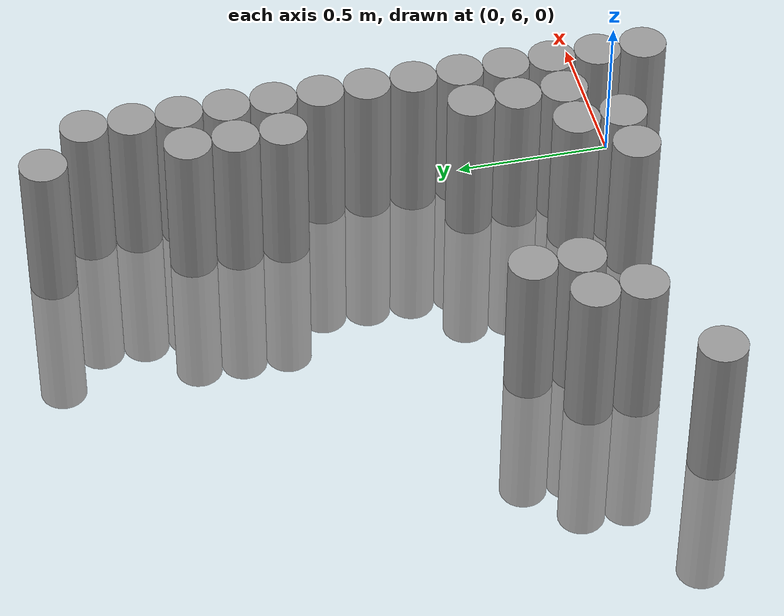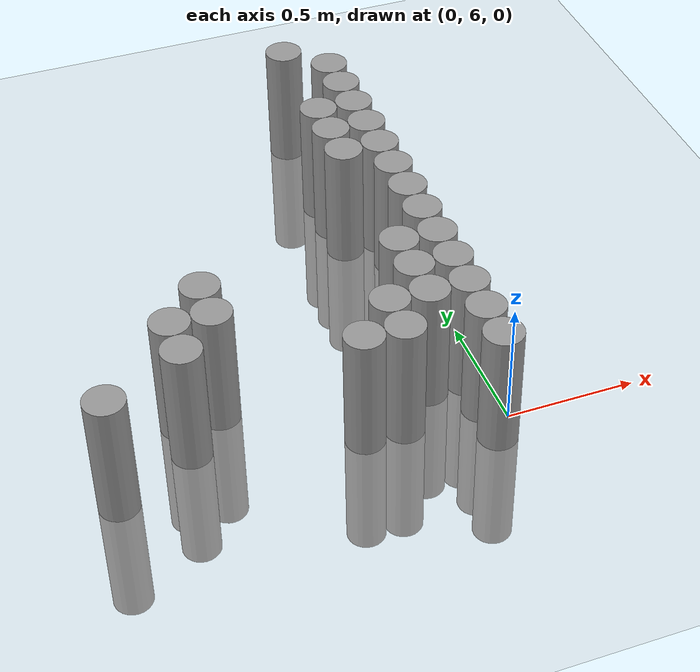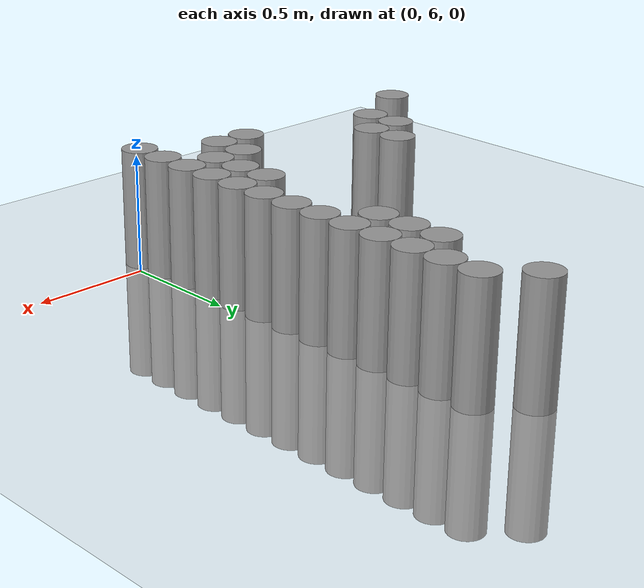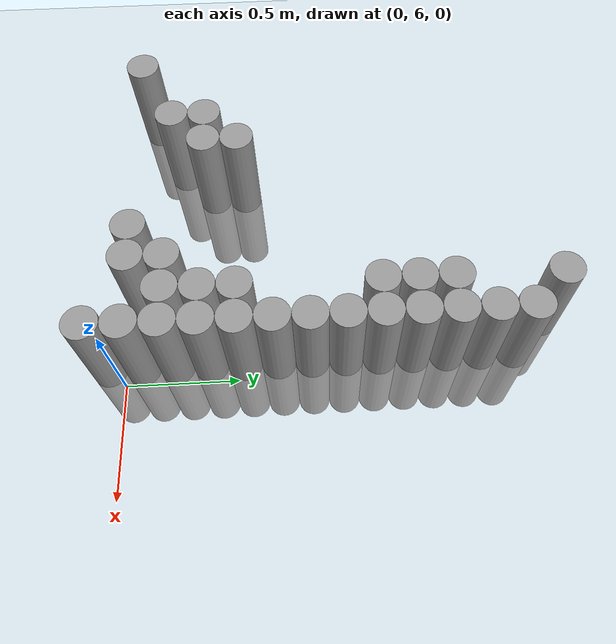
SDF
<sdf version="1.6">
 <world name="default">
  <model name="ground_plane">
   <static>1</static>
   <static>1</static>
   <link name="link">
    <collision name="collision">
     <geometry><plane><normal>0 0 1</normal><size>100 100</size></plane></geometry>
     <surface><friction><ode><mu>100</mu><mu2>50</mu2></ode></friction></surface>
    </collision>
    <visual name="visual">
     <cast_shadows>0</cast_shadows>
     <geometry><plane><normal>0 0 1</normal><size>100 100</size></plane></geometry>
     <material>
      <script><uri>file://media/materials/scripts/gazebo.material</uri><name>Gazebo/Grey</name></script>
     </material>
    </visual>
   </link>
  </model>
  <model name="unit_cylinder_159">
   <static>1</static>
   <pose>-1.425000 6.075000 0.000000 0.000000 0.000000 0.000000</pose>
   <link name="link">
    <inertial>
     <mass>1</mass>
     <inertia><ixx>0.145833</ixx><ixy>0</ixy><ixz>0</ixz><iyy>0.145833</iyy><iyz>0</iyz><izz>0.125</izz></inertia>
    </inertial>
    <collision name="collision">
     <geometry><cylinder><radius>0.075000</radius><length>1</length></cylinder></geometry>
    </collision>
    <visual name="visual">
     <geometry><cylinder><radius>0.075000</radius><length>1</length></cylinder></geometry>
     <material>
      <script><name>Gazebo/Grey</name><uri>file://media/materials/scripts/gazebo.material</uri></script>
     </material>
    </visual>
   </link>
  </model>
  <model name="unit_cylinder_162">
   <static>1</static>
   <pose>-1.125000 6.225000 0.000000 0.000000 0.000000 0.000000</pose>
   <link name="link">
    <inertial>
     <mass>1</mass>
     <inertia><ixx>0.145833</ixx><ixy>0</ixy><ixz>0</ixz><iyy>0.145833</iyy><iyz>0</iyz><izz>0.125</izz></inertia>
    </inertial>
    <collision name="collision">
     <geometry><cylinder><radius>0.075000</radius><length>1</length></cylinder></geometry>
    </collision>
    <visual name="visual">
     <geometry><cylinder><radius>0.075000</radius><length>1</length></cylinder></geometry>
     <material>
      <script><name>Gazebo/Grey</name><uri>file://media/materials/scripts/gazebo.material</uri></script>
     </material>
    </visual>
   </link>
  </model>
  <model name="unit_cylinder_163">
   <static>1</static>
   <pose>-1.125000 6.375000 0.000000 0.000000 0.000000 0.000000</pose>
   <link name="link">
    <inertial>
     <mass>1</mass>
     <inertia><ixx>0.145833</ixx><ixy>0</ixy><ixz>0</ixz><iyy>0.145833</iyy><iyz>0</iyz><izz>0.125</izz></inertia>
    </inertial>
    <collision name="collision">
     <geometry><cylinder><radius>0.075000</radius><length>1</length></cylinder></geometry>
    </collision>
    <visual name="visual">
     <geometry><cylinder><radius>0.075000</radius><length>1</length></cylinder></geometry>
     <material>
      <script><name>Gazebo/Grey</name><uri>file://media/materials/scripts/gazebo.material</uri></script>
     </material>
    </visual>
   </link>
  </model>
  <model name="unit_cylinder_165">
   <static>1</static>
   <pose>-0.975000 6.375000 0.000000 0.000000 0.000000 0.000000</pose>
   <link name="link">
    <inertial>
     <mass>1</mass>
     <inertia><ixx>0.145833</ixx><ixy>0</ixy><ixz>0</ixz><iyy>0.145833</iyy><iyz>0</iyz><izz>0.125</izz></inertia>
    </inertial>
    <collision name="collision">
     <geometry><cylinder><radius>0.075000</radius><length>1</length></cylinder></geometry>
    </collision>
    <visual name="visual">
     <geometry><cylinder><radius>0.075000</radius><length>1</length></cylinder></geometry>
     <material>
      <script><name>Gazebo/Grey</name><uri>file://media/materials/scripts/gazebo.material</uri></script>
     </material>
    </visual>
   </link>
  </model>
  <model name="unit_cylinder_166">
   <static>1</static>
   <pose>-0.975000 6.525000 0.000000 0.000000 0.000000 0.000000</pose>
   <link name="link">
    <inertial>
     <mass>1</mass>
     <inertia><ixx>0.145833</ixx><ixy>0</ixy><ixz>0</ixz><iyy>0.145833</iyy><iyz>0</iyz><izz>0.125</izz></inertia>
    </inertial>
    <collision name="collision">
     <geometry><cylinder><radius>0.075000</radius><length>1</length></cylinder></geometry>
    </collision>
    <visual name="visual">
     <geometry><cylinder><radius>0.075000</radius><length>1</length></cylinder></geometry>
     <material>
      <script><name>Gazebo/Grey</name><uri>file://media/materials/scripts/gazebo.material</uri></script>
     </material>
    </visual>
   </link>
  </model>
  <model name="unit_cylinder_169">
   <static>1</static>
   <pose>-0.525000 6.075000 0.000000 0.000000 0.000000 0.000000</pose>
   <link name="link">
    <inertial>
     <mass>1</mass>
     <inertia><ixx>0.145833</ixx><ixy>0</ixy><ixz>0</ixz><iyy>0.145833</iyy><iyz>0</iyz><izz>0.125</izz></inertia>
    </inertial>
    <collision name="collision">
     <geometry><cylinder><radius>0.075000</radius><length>1</length></cylinder></geometry>
    </collision>
    <visual name="visual">
     <geometry><cylinder><radius>0.075000</radius><length>1</length></cylinder></geometry>
     <material>
      <script><name>Gazebo/Grey</name><uri>file://media/materials/scripts/gazebo.material</uri></script>
     </material>
    </visual>
   </link>
  </model>
  <model name="unit_cylinder_173">
   <static>1</static>
   <pose>-0.375000 6.075000 0.000000 0.000000 0.000000 0.000000</pose>
   <link name="link">
    <inertial>
     <mass>1</mass>
     <inertia><ixx>0.145833</ixx><ixy>0</ixy><ixz>0</ixz><iyy>0.145833</iyy><iyz>0</iyz><izz>0.125</izz></inertia>
    </inertial>
    <collision name="collision">
     <geometry><cylinder><radius>0.075000</radius><length>1</length></cylinder></geometry>
    </collision>
    <visual name="visual">
     <geometry><cylinder><radius>0.075000</radius><length>1</length></cylinder></geometry>
     <material>
      <script><name>Gazebo/Grey</name><uri>file://media/materials/scripts/gazebo.material</uri></script>
     </material>
    </visual>
   </link>
  </model>
  <model name="unit_cylinder_174">
   <static>1</static>
   <pose>-0.375000 6.225000 0.000000 0.000000 0.000000 0.000000</pose>
   <link name="link">
    <inertial>
     <mass>1</mass>
     <inertia><ixx>0.145833</ixx><ixy>0</ixy><ixz>0</ixz><iyy>0.145833</iyy><iyz>0</iyz><izz>0.125</izz></inertia>
    </inertial>
    <collision name="collision">
     <geometry><cylinder><radius>0.075000</radius><length>1</length></cylinder></geometry>
    </collision>
    <visual name="visual">
     <geometry><cylinder><radius>0.075000</radius><length>1</length></cylinder></geometry>
     <material>
      <script><name>Gazebo/Grey</name><uri>file://media/materials/scripts/gazebo.material</uri></script>
     </material>
    </visual>
   </link>
  </model>
  <model name="unit_cylinder_181">
   <static>1</static>
   <pose>-0.225000 6.225000 0.000000 0.000000 0.000000 0.000000</pose>
   <link name="link">
    <inertial>
     <mass>1</mass>
     <inertia><ixx>0.145833</ixx><ixy>0</ixy><ixz>0</ixz><iyy>0.145833</iyy><iyz>0</iyz><izz>0.125</izz></inertia>
    </inertial>
    <collision name="collision">
     <geometry><cylinder><radius>0.075000</radius><length>1</length></cylinder></geometry>
    </collision>
    <visual name="visual">
     <geometry><cylinder><radius>0.075000</radius><length>1</length></cylinder></geometry>
     <material>
      <script><name>Gazebo/Grey</name><uri>file://media/materials/scripts/gazebo.material</uri></script>
     </material>
    </visual>
   </link>
  </model>
  <model name="unit_cylinder_182">
   <static>1</static>
   <pose>-0.225000 6.375000 0.000000 0.000000 0.000000 0.000000</pose>
   <link name="link">
    <inertial>
     <mass>1</mass>
     <inertia><ixx>0.145833</ixx><ixy>0</ixy><ixz>0</ixz><iyy>0.145833</iyy><iyz>0</iyz><izz>0.125</izz></inertia>
    </inertial>
    <collision name="collision">
     <geometry><cylinder><radius>0.075000</radius><length>1</length></cylinder></geometry>
    </collision>
    <visual name="visual">
     <geometry><cylinder><radius>0.075000</radius><length>1</length></cylinder></geometry>
     <material>
      <script><name>Gazebo/Grey</name><uri>file://media/materials/scripts/gazebo.material</uri></script>
     </material>
    </visual>
   </link>
  </model>
  <model name="unit_cylinder_183">
   <static>1</static>
   <pose>-0.225000 6.525000 0.000000 0.000000 0.000000 0.000000</pose>
   <link name="link">
    <inertial>
     <mass>1</mass>
     <inertia><ixx>0.145833</ixx><ixy>0</ixy><ixz>0</ixz><iyy>0.145833</iyy><iyz>0</iyz><izz>0.125</izz></inertia>
    </inertial>
    <collision name="collision">
     <geometry><cylinder><radius>0.075000</radius><length>1</length></cylinder></geometry>
    </collision>
    <visual name="visual">
     <geometry><cylinder><radius>0.075000</radius><length>1</length></cylinder></geometry>
     <material>
      <script><name>Gazebo/Grey</name><uri>file://media/materials/scripts/gazebo.material</uri></script>
     </material>
    </visual>
   </link>
  </model>
  <model name="unit_cylinder_184">
   <static>1</static>
   <pose>-0.225000 7.125000 0.000000 0.000000 0.000000 0.000000</pose>
   <link name="link">
    <inertial>
     <mass>1</mass>
     <inertia><ixx>0.145833</ixx><ixy>0</ixy><ixz>0</ixz><iyy>0.145833</iyy><iyz>0</iyz><izz>0.125</izz></inertia>
    </inertial>
    <collision name="collision">
     <geometry><cylinder><radius>0.075000</radius><length>1</length></cylinder></geometry>
    </collision>
    <visual name="visual">
     <geometry><cylinder><radius>0.075000</radius><length>1</length></cylinder></geometry>
     <material>
      <script><name>Gazebo/Grey</name><uri>file://media/materials/scripts/gazebo.material</uri></script>
     </material>
    </visual>
   </link>
  </model>
  <model name="unit_cylinder_185">
   <static>1</static>
   <pose>-0.225000 7.275000 0.000000 0.000000 0.000000 0.000000</pose>
   <link name="link">
    <inertial>
     <mass>1</mass>
     <inertia><ixx>0.145833</ixx><ixy>0</ixy><ixz>0</ixz><iyy>0.145833</iyy><iyz>0</iyz><izz>0.125</izz></inertia>
    </inertial>
    <collision name="collision">
     <geometry><cylinder><radius>0.075000</radius><length>1</length></cylinder></geometry>
    </collision>
    <visual name="visual">
     <geometry><cylinder><radius>0.075000</radius><length>1</length></cylinder></geometry>
     <material>
      <script><name>Gazebo/Grey</name><uri>file://media/materials/scripts/gazebo.material</uri></script>
     </material>
    </visual>
   </link>
  </model>
  <model name="unit_cylinder_186">
   <static>1</static>
   <pose>-0.225000 7.425000 0.000000 0.000000 0.000000 0.000000</pose>
   <link name="link">
    <inertial>
     <mass>1</mass>
     <inertia><ixx>0.145833</ixx><ixy>0</ixy><ixz>0</ixz><iyy>0.145833</iyy><iyz>0</iyz><izz>0.125</izz></inertia>
    </inertial>
    <collision name="collision">
     <geometry><cylinder><radius>0.075000</radius><length>1</length></cylinder></geometry>
    </collision>
    <visual name="visual">
     <geometry><cylinder><radius>0.075000</radius><length>1</length></cylinder></geometry>
     <material>
      <script><name>Gazebo/Grey</name><uri>file://media/materials/scripts/gazebo.material</uri></script>
     </material>
    </visual>
   </link>
  </model>
  <model name="unit_cylinder_187">
   <static>1</static>
   <pose>-0.225000 7.875000 0.000000 0.000000 0.000000 0.000000</pose>
   <link name="link">
    <inertial>
     <mass>1</mass>
     <inertia><ixx>0.145833</ixx><ixy>0</ixy><ixz>0</ixz><iyy>0.145833</iyy><iyz>0</iyz><izz>0.125</izz></inertia>
    </inertial>
    <collision name="collision">
     <geometry><cylinder><radius>0.075000</radius><length>1</length></cylinder></geometry>
    </collision>
    <visual name="visual">
     <geometry><cylinder><radius>0.075000</radius><length>1</length></cylinder></geometry>
     <material>
      <script><name>Gazebo/Grey</name><uri>file://media/materials/scripts/gazebo.material</uri></script>
     </material>
    </visual>
   </link>
  </model>
  <model name="unit_cylinder_200">
   <static>1</static>
   <pose>-0.075000 5.925000 0.000000 0.000000 0.000000 0.000000</pose>
   <link name="link">
    <inertial>
     <mass>1</mass>
     <inertia><ixx>0.145833</ixx><ixy>0</ixy><ixz>0</ixz><iyy>0.145833</iyy><iyz>0</iyz><izz>0.125</izz></inertia>
    </inertial>
    <collision name="collision">
     <geometry><cylinder><radius>0.075000</radius><length>1</length></cylinder></geometry>
    </collision>
    <visual name="visual">
     <geometry><cylinder><radius>0.075000</radius><length>1</length></cylinder></geometry>
     <material>
      <script><name>Gazebo/Grey</name><uri>file://media/materials/scripts/gazebo.material</uri></script>
     </material>
    </visual>
   </link>
  </model>
  <model name="unit_cylinder_201">
   <static>1</static>
   <pose>-0.075000 6.075000 0.000000 0.000000 0.000000 0.000000</pose>
   <link name="link">
    <inertial>
     <mass>1</mass>
     <inertia><ixx>0.145833</ixx><ixy>0</ixy><ixz>0</ixz><iyy>0.145833</iyy><iyz>0</iyz><izz>0.125</izz></inertia>
    </inertial>
    <collision name="collision">
     <geometry><cylinder><radius>0.075000</radius><length>1</length></cylinder></geometry>
    </collision>
    <visual name="visual">
     <geometry><cylinder><radius>0.075000</radius><length>1</length></cylinder></geometry>
     <material>
      <script><name>Gazebo/Grey</name><uri>file://media/materials/scripts/gazebo.material</uri></script>
     </material>
    </visual>
   </link>
  </model>
  <model name="unit_cylinder_202">
   <static>1</static>
   <pose>-0.075000 6.225000 0.000000 0.000000 0.000000 0.000000</pose>
   <link name="link">
    <inertial>
     <mass>1</mass>
     <inertia><ixx>0.145833</ixx><ixy>0</ixy><ixz>0</ixz><iyy>0.145833</iyy><iyz>0</iyz><izz>0.125</izz></inertia>
    </inertial>
    <collision name="collision">
     <geometry><cylinder><radius>0.075000</radius><length>1</length></cylinder></geometry>
    </collision>
    <visual name="visual">
     <geometry><cylinder><radius>0.075000</radius><length>1</length></cylinder></geometry>
     <material>
      <script><name>Gazebo/Grey</name><uri>file://media/materials/scripts/gazebo.material</uri></script>
     </material>
    </visual>
   </link>
  </model>
  <model name="unit_cylinder_203">
   <static>1</static>
   <pose>-0.075000 6.375000 0.000000 0.000000 0.000000 0.000000</pose>
   <link name="link">
    <inertial>
     <mass>1</mass>
     <inertia><ixx>0.145833</ixx><ixy>0</ixy><ixz>0</ixz><iyy>0.145833</iyy><iyz>0</iyz><izz>0.125</izz></inertia>
    </inertial>
    <collision name="collision">
     <geometry><cylinder><radius>0.075000</radius><length>1</length></cylinder></geometry>
    </collision>
    <visual name="visual">
     <geometry><cylinder><radius>0.075000</radius><length>1</length></cylinder></geometry>
     <material>
      <script><name>Gazebo/Grey</name><uri>file://media/materials/scripts/gazebo.material</uri></script>
     </material>
    </visual>
   </link>
  </model>
  <model name="unit_cylinder_204">
   <static>1</static>
   <pose>-0.075000 6.525000 0.000000 0.000000 0.000000 0.000000</pose>
   <link name="link">
    <inertial>
     <mass>1</mass>
     <inertia><ixx>0.145833</ixx><ixy>0</ixy><ixz>0</ixz><iyy>0.145833</iyy><iyz>0</iyz><izz>0.125</izz></inertia>
    </inertial>
    <collision name="collision">
     <geometry><cylinder><radius>0.075000</radius><length>1</length></cylinder></geometry>
    </collision>
    <visual name="visual">
     <geometry><cylinder><radius>0.075000</radius><length>1</length></cylinder></geometry>
     <material>
      <script><name>Gazebo/Grey</name><uri>file://media/materials/scripts/gazebo.material</uri></script>
     </material>
    </visual>
   </link>
  </model>
  <model name="unit_cylinder_205">
   <static>1</static>
   <pose>-0.075000 6.675000 0.000000 0.000000 0.000000 0.000000</pose>
   <link name="link">
    <inertial>
     <mass>1</mass>
     <inertia><ixx>0.145833</ixx><ixy>0</ixy><ixz>0</ixz><iyy>0.145833</iyy><iyz>0</iyz><izz>0.125</izz></inertia>
    </inertial>
    <collision name="collision">
     <geometry><cylinder><radius>0.075000</radius><length>1</length></cylinder></geometry>
    </collision>
    <visual name="visual">
     <geometry><cylinder><radius>0.075000</radius><length>1</length></cylinder></geometry>
     <material>
      <script><name>Gazebo/Grey</name><uri>file://media/materials/scripts/gazebo.material</uri></script>
     </material>
    </visual>
   </link>
  </model>
  <model name="unit_cylinder_206">
   <static>1</static>
   <pose>-0.075000 6.825000 0.000000 0.000000 0.000000 0.000000</pose>
   <link name="link">
    <inertial>
     <mass>1</mass>
     <inertia><ixx>0.145833</ixx><ixy>0</ixy><ixz>0</ixz><iyy>0.145833</iyy><iyz>0</iyz><izz>0.125</izz></inertia>
    </inertial>
    <collision name="collision">
     <geometry><cylinder><radius>0.075000</radius><length>1</length></cylinder></geometry>
    </collision>
    <visual name="visual">
     <geometry><cylinder><radius>0.075000</radius><length>1</length></cylinder></geometry>
     <material>
      <script><name>Gazebo/Grey</name><uri>file://media/materials/scripts/gazebo.material</uri></script>
     </material>
    </visual>
   </link>
  </model>
  <model name="unit_cylinder_207">
   <static>1</static>
   <pose>-0.075000 6.975000 0.000000 0.000000 0.000000 0.000000</pose>
   <link name="link">
    <inertial>
     <mass>1</mass>
     <inertia><ixx>0.145833</ixx><ixy>0</ixy><ixz>0</ixz><iyy>0.145833</iyy><iyz>0</iyz><izz>0.125</izz></inertia>
    </inertial>
    <collision name="collision">
     <geometry><cylinder><radius>0.075000</radius><length>1</length></cylinder></geometry>
    </collision>
    <visual name="visual">
     <geometry><cylinder><radius>0.075000</radius><length>1</length></cylinder></geometry>
     <material>
      <script><name>Gazebo/Grey</name><uri>file://media/materials/scripts/gazebo.material</uri></script>
     </material>
    </visual>
   </link>
  </model>
  <model name="unit_cylinder_208">
   <static>1</static>
   <pose>-0.075000 7.125000 0.000000 0.000000 0.000000 0.000000</pose>
   <link name="link">
    <inertial>
     <mass>1</mass>
     <inertia><ixx>0.145833</ixx><ixy>0</ixy><ixz>0</ixz><iyy>0.145833</iyy><iyz>0</iyz><izz>0.125</izz></inertia>
    </inertial>
    <collision name="collision">
     <geometry><cylinder><radius>0.075000</radius><length>1</length></cylinder></geometry>
    </collision>
    <visual name="visual">
     <geometry><cylinder><radius>0.075000</radius><length>1</length></cylinder></geometry>
     <material>
      <script><name>Gazebo/Grey</name><uri>file://media/materials/scripts/gazebo.material</uri></script>
     </material>
    </visual>
   </link>
  </model>
  <model name="unit_cylinder_209">
   <static>1</static>
   <pose>-0.075000 7.275000 0.000000 0.000000 0.000000 0.000000</pose>
   <link name="link">
    <inertial>
     <mass>1</mass>
     <inertia><ixx>0.145833</ixx><ixy>0</ixy><ixz>0</ixz><iyy>0.145833</iyy><iyz>0</iyz><izz>0.125</izz></inertia>
    </inertial>
    <collision name="collision">
     <geometry><cylinder><radius>0.075000</radius><length>1</length></cylinder></geometry>
    </collision>
    <visual name="visual">
     <geometry><cylinder><radius>0.075000</radius><length>1</length></cylinder></geometry>
     <material>
      <script><name>Gazebo/Grey</name><uri>file://media/materials/scripts/gazebo.material</uri></script>
     </material>
    </visual>
   </link>
  </model>
  <model name="unit_cylinder_210">
   <static>1</static>
   <pose>-0.075000 7.425000 0.000000 0.000000 0.000000 0.000000</pose>
   <link name="link">
    <inertial>
     <mass>1</mass>
     <inertia><ixx>0.145833</ixx><ixy>0</ixy><ixz>0</ixz><iyy>0.145833</iyy><iyz>0</iyz><izz>0.125</izz></inertia>
    </inertial>
    <collision name="collision">
     <geometry><cylinder><radius>0.075000</radius><length>1</length></cylinder></geometry>
    </collision>
    <visual name="visual">
     <geometry><cylinder><radius>0.075000</radius><length>1</length></cylinder></geometry>
     <material>
      <script><name>Gazebo/Grey</name><uri>file://media/materials/scripts/gazebo.material</uri></script>
     </material>
    </visual>
   </link>
  </model>
  <model name="unit_cylinder_211">
   <static>1</static>
   <pose>-0.075000 7.575000 0.000000 0.000000 0.000000 0.000000</pose>
   <link name="link">
    <inertial>
     <mass>1</mass>
     <inertia><ixx>0.145833</ixx><ixy>0</ixy><ixz>0</ixz><iyy>0.145833</iyy><iyz>0</iyz><izz>0.125</izz></inertia>
    </inertial>
    <collision name="collision">
     <geometry><cylinder><radius>0.075000</radius><length>1</length></cylinder></geometry>
    </collision>
    <visual name="visual">
     <geometry><cylinder><radius>0.075000</radius><length>1</length></cylinder></geometry>
     <material>
      <script><name>Gazebo/Grey</name><uri>file://media/materials/scripts/gazebo.material</uri></script>
     </material>
    </visual>
   </link>
  </model>
  <model name="unit_cylinder_212">
   <static>1</static>
   <pose>-0.075000 7.725000 0.000000 0.000000 0.000000 0.000000</pose>
   <link name="link">
    <inertial>
     <mass>1</mass>
     <inertia><ixx>0.145833</ixx><ixy>0</ixy><ixz>0</ixz><iyy>0.145833</iyy><iyz>0</iyz><izz>0.125</izz></inertia>
    </inertial>
    <collision name="collision">
     <geometry><cylinder><radius>0.075000</radius><length>1</length></cylinder></geometry>
    </collision>
    <visual name="visual">
     <geometry><cylinder><radius>0.075000</radius><length>1</length></cylinder></geometry>
     <material>
      <script><name>Gazebo/Grey</name><uri>file://media/materials/scripts/gazebo.material</uri></script>
     </material>
    </visual>
   </link>
  </model>
 </world>
</sdf>
